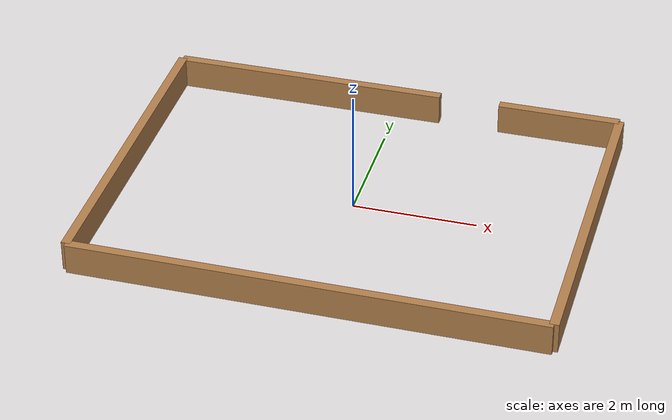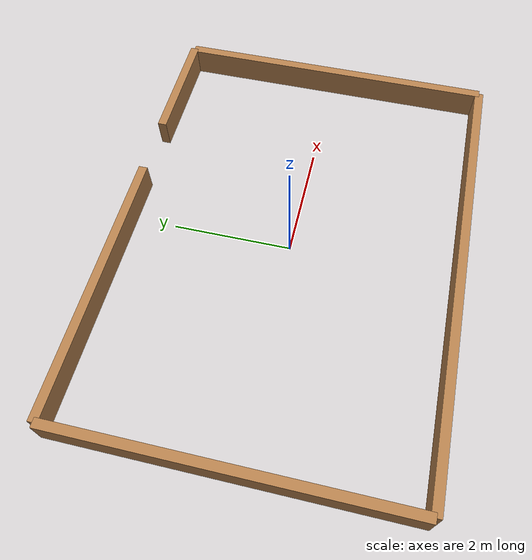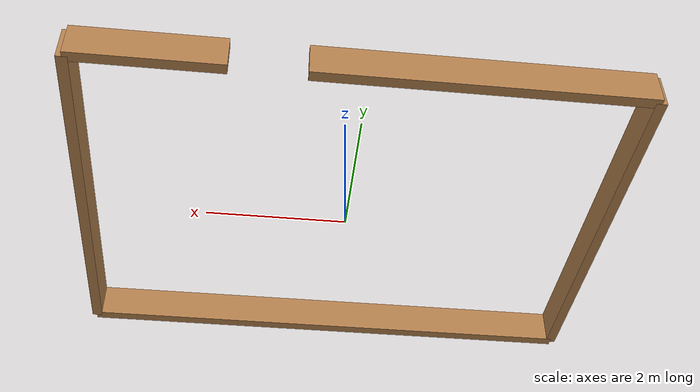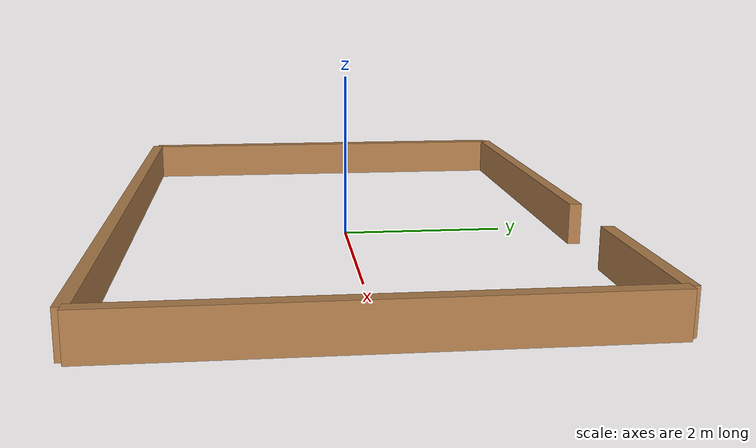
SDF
<?xml version='1.0'?>
<sdf version='1.8'>
  <model name='outer_walls'>
    <pose>0 0 0 0 0 0</pose>
    <link name='Wall_1'>
      <collision name='Wall_1_Collision'>
        <geometry>
          <box>
            <size>5.5 0.15 0.5</size>
          </box>
        </geometry>
        <pose>0 0 0.25 0 -0 0</pose>
      </collision>
      <visual name='Wall_1_Visual'>
        <pose>0 0 0.25 0 -0 0</pose>
        <geometry>
          <box>
            <size>5.5 0.15 0.5</size>
          </box>
        </geometry>
        <material>
          <script>
            <uri>file://media/materials/scripts/gazebo.material</uri>
            <name>Gazebo/Wood</name>
          </script>
          <ambient>1 1 1 1</ambient>
        </material>
      </visual>
      <pose>-3.75 0 0 0 0 1.57</pose>
    </link>
    <link name='Wall_2a'>
      <collision name='Wall_2a_Collision'>
        <geometry>
          <box>
            <size>2.0 0.15 0.5</size>
          </box>
        </geometry>
        <pose>0 0 0.25 0 -0 0</pose>
      </collision>
      <visual name='Wall_2a_Visual'>
        <pose>0 0 0.25 0 -0 0</pose>
        <geometry>
          <box>
            <size>2.0 0.15 0.5</size>
          </box>
        </geometry>
        <material>
          <script>
            <uri>file://media/materials/scripts/gazebo.material</uri>
            <name>Gazebo/Wood</name>
          </script>
          <ambient>1 1 1 1</ambient>
        </material>
      </visual>
      <pose>2.75 2.75 0 0 0 0</pose>
    </link>
    <link name='Wall_2b'>
      <collision name='Wall_2b_Collision'>
        <geometry>
          <box>
            <size>4.5 0.15 0.5</size>
          </box>
        </geometry>
        <pose>0 0 0.25 0 -0 0</pose>
      </collision>
      <visual name='Wall_2b_Visual'>
        <pose>0 0 0.25 0 -0 0</pose>
        <geometry>
          <box>
            <size>4.5 0.15 0.5</size>
          </box>
        </geometry>
        <material>
          <script>
            <uri>file://media/materials/scripts/gazebo.material</uri>
            <name>Gazebo/Wood</name>
          </script>
          <ambient>1 1 1 1</ambient>
        </material>
      </visual>
      <pose>-1.5 2.75 0 0 0 0</pose>
    </link>
    <link name='Wall_3'>
      <collision name='Wall_3_Collision'>
        <geometry>
          <box>
            <size>5.5 0.15 0.5</size>
          </box>
        </geometry>
        <pose>0 0 0.25 0 -0 0</pose>
      </collision>
      <visual name='Wall_3_Visual'>
        <pose>0 0 0.25 0 -0 0</pose>
        <geometry>
          <box>
            <size>5.5 0.15 0.5</size>
          </box>
        </geometry>
        <material>
          <script>
            <uri>file://media/materials/scripts/gazebo.material</uri>
            <name>Gazebo/Wood</name>
          </script>
          <ambient>1 1 1 1</ambient>
        </material>
      </visual>
      <pose>3.75 0 0 0 0 1.57</pose>
    </link>
    <link name='Wall_4'>
      <collision name='Wall_4_Collision'>
        <geometry>
          <box>
            <size>7.5 0.15 0.5</size>
          </box>
        </geometry>
        <pose>0 0 0.25 0 -0 0</pose>
      </collision>
      <visual name='Wall_4_Visual'>
        <pose>0 0 0.25 0 -0 0</pose>
        <geometry>
          <box>
            <size>7.5 0.15 0.5</size>
          </box>
        </geometry>
        <material>
          <script>
            <uri>file://media/materials/scripts/gazebo.material</uri>
            <name>Gazebo/Wood</name>
          </script>
          <ambient>1 1 1 1</ambient>
        </material>
      </visual>
      <pose>0 -2.75 0 0 0 0</pose>
    </link>
  </model>
</sdf>
